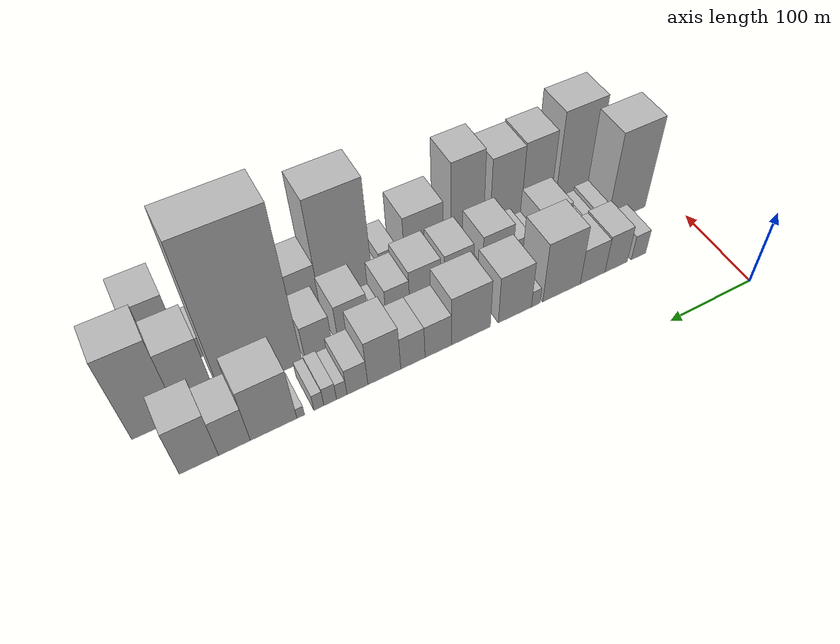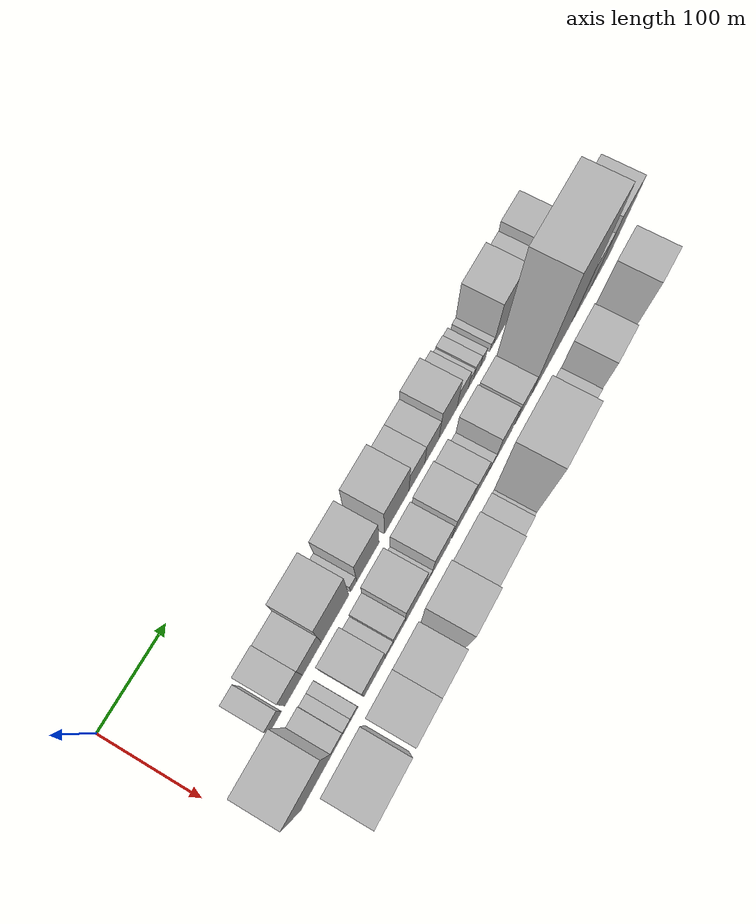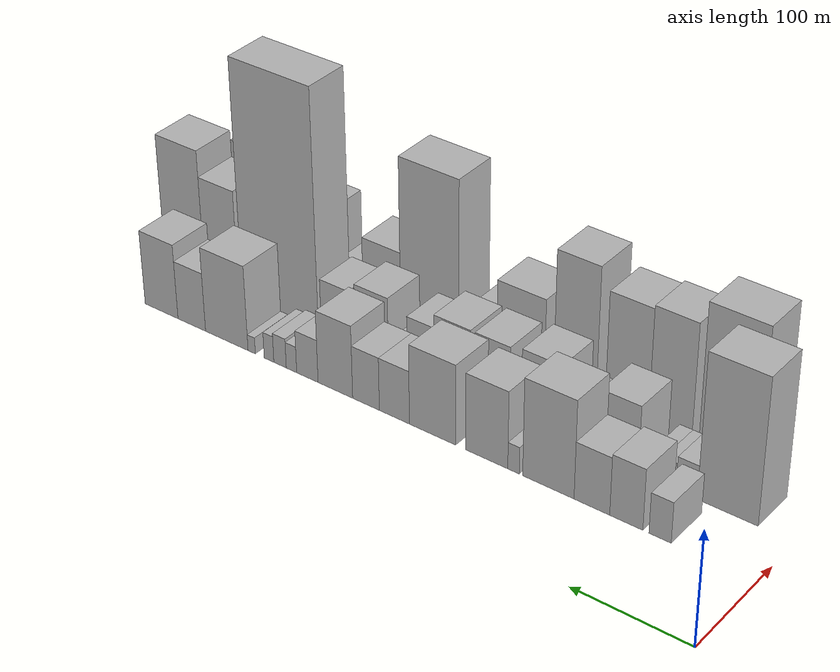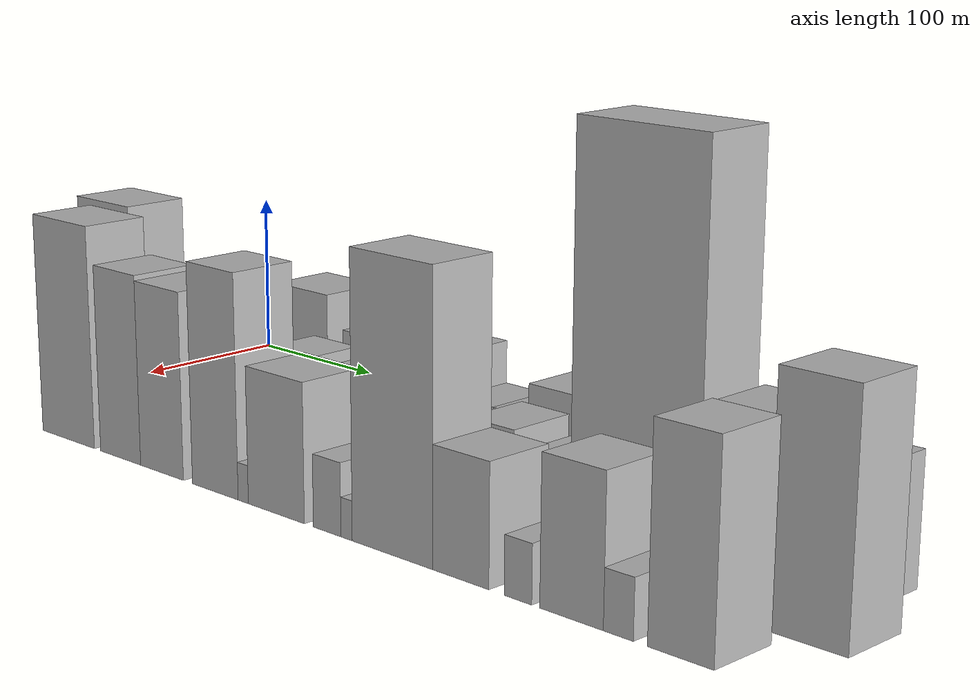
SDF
<sdf version="1.6">
 <world name="default">
  <model name="building_18">
   <static>1</static>
   <pose>100.0000 78.0467 0 0.000000 0.000000 0.000000</pose>
   <link name="link">
    <pose>0 0 18.00 0 0 0</pose>
    <collision name="collision"><geometry><box><size>40.0000 18.3079 36.0000</size></box></geometry></collision>
    <visual name="visual">
     <cast_shadows>0</cast_shadows>
     <geometry><box><size>40.0000 18.3079 36.0000</size></box></geometry>
     <material>
      <script>
       <uri>model://HANNAS_wall/materials/scripts</uri>
       <uri>model://HANNAS_wall/materials/textures</uri>
       <name>vrc/HANNAS_wall</name>
      </script>
     </material>
    </visual>
   </link>
  </model>
  <model name="building_19">
   <static>1</static>
   <pose>100.0000 106.0688 0 0.000000 0.000000 0.000000</pose>
   <link name="link">
    <pose>0 0 27.00 0 0 0</pose>
    <collision name="collision"><geometry><box><size>40.0000 27.7362 54.0000</size></box></geometry></collision>
    <visual name="visual">
     <cast_shadows>0</cast_shadows>
     <geometry><box><size>40.0000 27.7362 54.0000</size></box></geometry>
     <material>
      <script>
       <uri>model://HANNAS_wall/materials/scripts</uri>
       <uri>model://HANNAS_wall/materials/textures</uri>
       <name>vrc/HANNAS_wall</name>
      </script>
     </material>
    </visual>
   </link>
  </model>
  <model name="building_20">
   <static>1</static>
   <pose>100.0000 135.0909 0 0.000000 0.000000 0.000000</pose>
   <link name="link">
    <pose>0 0 25.50 0 0 0</pose>
    <collision name="collision"><geometry><box><size>40.0000 30.3081 51.0000</size></box></geometry></collision>
    <visual name="visual">
     <cast_shadows>0</cast_shadows>
     <geometry><box><size>40.0000 30.3081 51.0000</size></box></geometry>
     <material>
      <script>
       <uri>model://HANNAS_wall/materials/scripts</uri>
       <uri>model://HANNAS_wall/materials/textures</uri>
       <name>vrc/HANNAS_wall</name>
      </script>
     </material>
    </visual>
   </link>
  </model>
  <model name="building_21">
   <static>1</static>
   <pose>100.0000 172.5904 0 0.000000 0.000000 0.000000</pose>
   <link name="link">
    <pose>0 0 43.50 0 0 0</pose>
    <collision name="collision"><geometry><box><size>40.0000 44.6907 87.0000</size></box></geometry></collision>
    <visual name="visual">
     <cast_shadows>0</cast_shadows>
     <geometry><box><size>40.0000 44.6907 87.0000</size></box></geometry>
     <material>
      <script>
       <uri>model://HANNAS_wall/materials/scripts</uri>
       <uri>model://HANNAS_wall/materials/textures</uri>
       <name>vrc/HANNAS_wall</name>
      </script>
     </material>
    </visual>
   </link>
  </model>
  <model name="building_22">
   <static>1</static>
   <pose>100.0000 203.0269 0 0.000000 0.000000 0.000000</pose>
   <link name="link">
    <pose>0 0 12.00 0 0 0</pose>
    <collision name="collision"><geometry><box><size>40.0000 10.1823 24.0000</size></box></geometry></collision>
    <visual name="visual">
     <cast_shadows>0</cast_shadows>
     <geometry><box><size>40.0000 10.1823 24.0000</size></box></geometry>
     <material>
      <script>
       <uri>model://HANNAS_wall/materials/scripts</uri>
       <uri>model://HANNAS_wall/materials/textures</uri>
       <name>vrc/HANNAS_wall</name>
      </script>
     </material>
    </visual>
   </link>
  </model>
  <model name="building_23">
   <static>1</static>
   <pose>100.0000 227.0333 0 0.000000 0.000000 0.000000</pose>
   <link name="link">
    <pose>0 0 34.50 0 0 0</pose>
    <collision name="collision"><geometry><box><size>40.0000 37.8305 69.0000</size></box></geometry></collision>
    <visual name="visual">
     <cast_shadows>0</cast_shadows>
     <geometry><box><size>40.0000 37.8305 69.0000</size></box></geometry>
     <material>
      <script>
       <uri>model://HANNAS_wall/materials/scripts</uri>
       <uri>model://HANNAS_wall/materials/textures</uri>
       <name>vrc/HANNAS_wall</name>
      </script>
     </material>
    </visual>
   </link>
  </model>
  <model name="building_24">
   <static>1</static>
   <pose>100.0000 276.3763 0 0.000000 0.000000 0.000000</pose>
   <link name="link">
    <pose>0 0 36.00 0 0 0</pose>
    <collision name="collision"><geometry><box><size>40.0000 42.8556 72.0000</size></box></geometry></collision>
    <visual name="visual">
     <cast_shadows>0</cast_shadows>
     <geometry><box><size>40.0000 42.8556 72.0000</size></box></geometry>
     <material>
      <script>
       <uri>model://HANNAS_wall/materials/scripts</uri>
       <uri>model://HANNAS_wall/materials/textures</uri>
       <name>vrc/HANNAS_wall</name>
      </script>
     </material>
    </visual>
   </link>
  </model>
  <model name="building_25">
   <static>1</static>
   <pose>100.0000 311.9865 0 0.000000 0.000000 0.000000</pose>
   <link name="link">
    <pose>0 0 24.00 0 0 0</pose>
    <collision name="collision"><geometry><box><size>40.0000 28.3647 48.0000</size></box></geometry></collision>
    <visual name="visual">
     <cast_shadows>0</cast_shadows>
     <geometry><box><size>40.0000 28.3647 48.0000</size></box></geometry>
     <material>
      <script>
       <uri>model://HANNAS_wall/materials/scripts</uri>
       <uri>model://HANNAS_wall/materials/textures</uri>
       <name>vrc/HANNAS_wall</name>
      </script>
     </material>
    </visual>
   </link>
  </model>
  <model name="building_26">
   <static>1</static>
   <pose>100.0000 338.9722 0 0.000000 0.000000 0.000000</pose>
   <link name="link">
    <pose>0 0 24.00 0 0 0</pose>
    <collision name="collision"><geometry><box><size>40.0000 25.6068 48.0000</size></box></geometry></collision>
    <visual name="visual">
     <cast_shadows>0</cast_shadows>
     <geometry><box><size>40.0000 25.6068 48.0000</size></box></geometry>
     <material>
      <script>
       <uri>model://HANNAS_wall/materials/scripts</uri>
       <uri>model://HANNAS_wall/materials/textures</uri>
       <name>vrc/HANNAS_wall</name>
      </script>
     </material>
    </visual>
   </link>
  </model>
  <model name="building_27">
   <static>1</static>
   <pose>100.0000 368.6468 0 0.000000 0.000000 0.000000</pose>
   <link name="link">
    <pose>0 0 33.00 0 0 0</pose>
    <collision name="collision"><geometry><box><size>40.0000 33.7423 66.0000</size></box></geometry></collision>
    <visual name="visual">
     <cast_shadows>0</cast_shadows>
     <geometry><box><size>40.0000 33.7423 66.0000</size></box></geometry>
     <material>
      <script>
       <uri>model://HANNAS_wall/materials/scripts</uri>
       <uri>model://HANNAS_wall/materials/textures</uri>
       <name>vrc/HANNAS_wall</name>
      </script>
     </material>
    </visual>
   </link>
  </model>
  <model name="building_28">
   <static>1</static>
   <pose>100.0000 396.0992 0 0.000000 0.000000 0.000000</pose>
   <link name="link">
    <pose>0 0 19.50 0 0 0</pose>
    <collision name="collision"><geometry><box><size>40.0000 21.1626 39.0000</size></box></geometry></collision>
    <visual name="visual">
     <cast_shadows>0</cast_shadows>
     <geometry><box><size>40.0000 21.1626 39.0000</size></box></geometry>
     <material>
      <script>
       <uri>model://HANNAS_wall/materials/scripts</uri>
       <uri>model://HANNAS_wall/materials/textures</uri>
       <name>vrc/HANNAS_wall</name>
      </script>
     </material>
    </visual>
   </link>
  </model>
  <model name="building_29">
   <static>1</static>
   <pose>100.0000 411.8839 0 0.000000 0.000000 0.000000</pose>
   <link name="link">
    <pose>0 0 12.00 0 0 0</pose>
    <collision name="collision"><geometry><box><size>40.0000 10.4068 24.0000</size></box></geometry></collision>
    <visual name="visual">
     <cast_shadows>0</cast_shadows>
     <geometry><box><size>40.0000 10.4068 24.0000</size></box></geometry>
     <material>
      <script>
       <uri>model://HANNAS_wall/materials/scripts</uri>
       <uri>model://HANNAS_wall/materials/textures</uri>
       <name>vrc/HANNAS_wall</name>
      </script>
     </material>
    </visual>
   </link>
  </model>
  <model name="building_30">
   <static>1</static>
   <pose>100.0000 423.3340 0 0.000000 0.000000 0.000000</pose>
   <link name="link">
    <pose>0 0 13.50 0 0 0</pose>
    <collision name="collision"><geometry><box><size>40.0000 12.4933 27.0000</size></box></geometry></collision>
    <visual name="visual">
     <cast_shadows>0</cast_shadows>
     <geometry><box><size>40.0000 12.4933 27.0000</size></box></geometry>
     <material>
      <script>
       <uri>model://HANNAS_wall/materials/scripts</uri>
       <uri>model://HANNAS_wall/materials/textures</uri>
       <name>vrc/HANNAS_wall</name>
      </script>
     </material>
    </visual>
   </link>
  </model>
  <model name="building_31">
   <static>1</static>
   <pose>100.0000 434.4753 0 0.000000 0.000000 0.000000</pose>
   <link name="link">
    <pose>0 0 12.00 0 0 0</pose>
    <collision name="collision"><geometry><box><size>40.0000 9.7893 24.0000</size></box></geometry></collision>
    <visual name="visual">
     <cast_shadows>0</cast_shadows>
     <geometry><box><size>40.0000 9.7893 24.0000</size></box></geometry>
     <material>
      <script>
       <uri>model://HANNAS_wall/materials/scripts</uri>
       <uri>model://HANNAS_wall/materials/textures</uri>
       <name>vrc/HANNAS_wall</name>
      </script>
     </material>
    </visual>
   </link>
  </model>
  <model name="building_32">
   <static>1</static>
   <pose>100.0000 452.1030 0 0.000000 0.000000 0.000000</pose>
   <link name="link">
    <pose>0 0 7.50 0 0 0</pose>
    <collision name="collision"><geometry><box><size>40.0000 7.4662 15.0000</size></box></geometry></collision>
    <visual name="visual">
     <cast_shadows>0</cast_shadows>
     <geometry><box><size>40.0000 7.4662 15.0000</size></box></geometry>
     <material>
      <script>
       <uri>model://HANNAS_wall/materials/scripts</uri>
       <uri>model://HANNAS_wall/materials/textures</uri>
       <name>vrc/HANNAS_wall</name>
      </script>
     </material>
    </visual>
   </link>
  </model>
  <model name="building_33">
   <static>1</static>
   <pose>100.0000 477.8399 0 0.000000 0.000000 0.000000</pose>
   <link name="link">
    <pose>0 0 39.00 0 0 0</pose>
    <collision name="collision"><geometry><box><size>40.0000 44.0075 78.0000</size></box></geometry></collision>
    <visual name="visual">
     <cast_shadows>0</cast_shadows>
     <geometry><box><size>40.0000 44.0075 78.0000</size></box></geometry>
     <material>
      <script>
       <uri>model://HANNAS_wall/materials/scripts</uri>
       <uri>model://HANNAS_wall/materials/textures</uri>
       <name>vrc/HANNAS_wall</name>
      </script>
     </material>
    </visual>
   </link>
  </model>
  <model name="building_34">
   <static>1</static>
   <pose>100.0000 514.4065 0 0.000000 0.000000 0.000000</pose>
   <link name="link">
    <pose>0 0 27.00 0 0 0</pose>
    <collision name="collision"><geometry><box><size>40.0000 29.1258 54.0000</size></box></geometry></collision>
    <visual name="visual">
     <cast_shadows>0</cast_shadows>
     <geometry><box><size>40.0000 29.1258 54.0000</size></box></geometry>
     <material>
      <script>
       <uri>model://HANNAS_wall/materials/scripts</uri>
       <uri>model://HANNAS_wall/materials/textures</uri>
       <name>vrc/HANNAS_wall</name>
      </script>
     </material>
    </visual>
   </link>
  </model>
  <model name="building_35">
   <static>1</static>
   <pose>100.0000 546.5808 0 0.000000 0.000000 0.000000</pose>
   <link name="link">
    <pose>0 0 34.50 0 0 0</pose>
    <collision name="collision"><geometry><box><size>40.0000 35.2226 69.0000</size></box></geometry></collision>
    <visual name="visual">
     <cast_shadows>0</cast_shadows>
     <geometry><box><size>40.0000 35.2226 69.0000</size></box></geometry>
     <material>
      <script>
       <uri>model://HANNAS_wall/materials/scripts</uri>
       <uri>model://HANNAS_wall/materials/textures</uri>
       <name>vrc/HANNAS_wall</name>
      </script>
     </material>
    </visual>
   </link>
  </model>
  <model name="building_52">
   <static>1</static>
   <pose>152.0000 54.8650 0 0.000000 0.000000 0.000000</pose>
   <link name="link">
    <pose>0 0 64.50 0 0 0</pose>
    <collision name="collision"><geometry><box><size>40.0000 49.9821 129.0000</size></box></geometry></collision>
    <visual name="visual">
     <cast_shadows>0</cast_shadows>
     <geometry><box><size>40.0000 49.9821 129.0000</size></box></geometry>
     <material>
      <script>
       <uri>model://HANNAS_wall/materials/scripts</uri>
       <uri>model://HANNAS_wall/materials/textures</uri>
       <name>vrc/HANNAS_wall</name>
      </script>
     </material>
    </visual>
   </link>
  </model>
  <model name="building_53">
   <static>1</static>
   <pose>152.0000 88.7823 0 0.000000 0.000000 0.000000</pose>
   <link name="link">
    <pose>0 0 15.00 0 0 0</pose>
    <collision name="collision"><geometry><box><size>40.0000 17.8526 30.0000</size></box></geometry></collision>
    <visual name="visual">
     <cast_shadows>0</cast_shadows>
     <geometry><box><size>40.0000 17.8526 30.0000</size></box></geometry>
     <material>
      <script>
       <uri>model://HANNAS_wall/materials/scripts</uri>
       <uri>model://HANNAS_wall/materials/textures</uri>
       <name>vrc/HANNAS_wall</name>
      </script>
     </material>
    </visual>
   </link>
  </model>
  <model name="building_54">
   <static>1</static>
   <pose>152.0000 103.6320 0 0.000000 0.000000 0.000000</pose>
   <link name="link">
    <pose>0 0 12.00 0 0 0</pose>
    <collision name="collision"><geometry><box><size>40.0000 11.8467 24.0000</size></box></geometry></collision>
    <visual name="visual">
     <cast_shadows>0</cast_shadows>
     <geometry><box><size>40.0000 11.8467 24.0000</size></box></geometry>
     <material>
      <script>
       <uri>model://HANNAS_wall/materials/scripts</uri>
       <uri>model://HANNAS_wall/materials/textures</uri>
       <name>vrc/HANNAS_wall</name>
      </script>
     </material>
    </visual>
   </link>
  </model>
  <model name="building_55">
   <static>1</static>
   <pose>152.0000 115.1448 0 0.000000 0.000000 0.000000</pose>
   <link name="link">
    <pose>0 0 12.00 0 0 0</pose>
    <collision name="collision"><geometry><box><size>40.0000 11.1787 24.0000</size></box></geometry></collision>
    <visual name="visual">
     <cast_shadows>0</cast_shadows>
     <geometry><box><size>40.0000 11.1787 24.0000</size></box></geometry>
     <material>
      <script>
       <uri>model://HANNAS_wall/materials/scripts</uri>
       <uri>model://HANNAS_wall/materials/textures</uri>
       <name>vrc/HANNAS_wall</name>
      </script>
     </material>
    </visual>
   </link>
  </model>
  <model name="building_56">
   <static>1</static>
   <pose>152.0000 147.0022 0 0.000000 0.000000 0.000000</pose>
   <link name="link">
    <pose>0 0 30.00 0 0 0</pose>
    <collision name="collision"><geometry><box><size>40.0000 34.5362 60.0000</size></box></geometry></collision>
    <visual name="visual">
     <cast_shadows>0</cast_shadows>
     <geometry><box><size>40.0000 34.5362 60.0000</size></box></geometry>
     <material>
      <script>
       <uri>model://HANNAS_wall/materials/scripts</uri>
       <uri>model://HANNAS_wall/materials/textures</uri>
       <name>vrc/HANNAS_wall</name>
      </script>
     </material>
    </visual>
   </link>
  </model>
  <model name="building_57">
   <static>1</static>
   <pose>152.0000 170.9954 0 0.000000 0.000000 0.000000</pose>
   <link name="link">
    <pose>0 0 13.50 0 0 0</pose>
    <collision name="collision"><geometry><box><size>40.0000 13.4503 27.0000</size></box></geometry></collision>
    <visual name="visual">
     <cast_shadows>0</cast_shadows>
     <geometry><box><size>40.0000 13.4503 27.0000</size></box></geometry>
     <material>
      <script>
       <uri>model://HANNAS_wall/materials/scripts</uri>
       <uri>model://HANNAS_wall/materials/textures</uri>
       <name>vrc/HANNAS_wall</name>
      </script>
     </material>
    </visual>
   </link>
  </model>
  <model name="building_58">
   <static>1</static>
   <pose>152.0000 187.7708 0 0.000000 0.000000 0.000000</pose>
   <link name="link">
    <pose>0 0 19.50 0 0 0</pose>
    <collision name="collision"><geometry><box><size>40.0000 20.1006 39.0000</size></box></geometry></collision>
    <visual name="visual">
     <cast_shadows>0</cast_shadows>
     <geometry><box><size>40.0000 20.1006 39.0000</size></box></geometry>
     <material>
      <script>
       <uri>model://HANNAS_wall/materials/scripts</uri>
       <uri>model://HANNAS_wall/materials/textures</uri>
       <name>vrc/HANNAS_wall</name>
      </script>
     </material>
    </visual>
   </link>
  </model>
  <model name="building_59">
   <static>1</static>
   <pose>152.0000 215.5120 0 0.000000 0.000000 0.000000</pose>
   <link name="link">
    <pose>0 0 33.00 0 0 0</pose>
    <collision name="collision"><geometry><box><size>40.0000 35.3817 66.0000</size></box></geometry></collision>
    <visual name="visual">
     <cast_shadows>0</cast_shadows>
     <geometry><box><size>40.0000 35.3817 66.0000</size></box></geometry>
     <material>
      <script>
       <uri>model://HANNAS_wall/materials/scripts</uri>
       <uri>model://HANNAS_wall/materials/textures</uri>
       <name>vrc/HANNAS_wall</name>
      </script>
     </material>
    </visual>
   </link>
  </model>
  <model name="building_60">
   <static>1</static>
   <pose>152.0000 238.4505 0 0.000000 0.000000 0.000000</pose>
   <link name="link">
    <pose>0 0 12.00 0 0 0</pose>
    <collision name="collision"><geometry><box><size>40.0000 10.4954 24.0000</size></box></geometry></collision>
    <visual name="visual">
     <cast_shadows>0</cast_shadows>
     <geometry><box><size>40.0000 10.4954 24.0000</size></box></geometry>
     <material>
      <script>
       <uri>model://HANNAS_wall/materials/scripts</uri>
       <uri>model://HANNAS_wall/materials/textures</uri>
       <name>vrc/HANNAS_wall</name>
      </script>
     </material>
    </visual>
   </link>
  </model>
  <model name="building_61">
   <static>1</static>
   <pose>152.0000 259.8015 0 0.000000 0.000000 0.000000</pose>
   <link name="link">
    <pose>0 0 31.50 0 0 0</pose>
    <collision name="collision"><geometry><box><size>40.0000 32.2067 63.0000</size></box></geometry></collision>
    <visual name="visual">
     <cast_shadows>0</cast_shadows>
     <geometry><box><size>40.0000 32.2067 63.0000</size></box></geometry>
     <material>
      <script>
       <uri>model://HANNAS_wall/materials/scripts</uri>
       <uri>model://HANNAS_wall/materials/textures</uri>
       <name>vrc/HANNAS_wall</name>
      </script>
     </material>
    </visual>
   </link>
  </model>
  <model name="building_62">
   <static>1</static>
   <pose>152.0000 297.1086 0 0.000000 0.000000 0.000000</pose>
   <link name="link">
    <pose>0 0 31.50 0 0 0</pose>
    <collision name="collision"><geometry><box><size>40.0000 34.4074 63.0000</size></box></geometry></collision>
    <visual name="visual">
     <cast_shadows>0</cast_shadows>
     <geometry><box><size>40.0000 34.4074 63.0000</size></box></geometry>
     <material>
      <script>
       <uri>model://HANNAS_wall/materials/scripts</uri>
       <uri>model://HANNAS_wall/materials/textures</uri>
       <name>vrc/HANNAS_wall</name>
      </script>
     </material>
    </visual>
   </link>
  </model>
  <model name="building_63">
   <static>1</static>
   <pose>152.0000 327.1191 0 0.000000 0.000000 0.000000</pose>
   <link name="link">
    <pose>0 0 25.50 0 0 0</pose>
    <collision name="collision"><geometry><box><size>40.0000 25.6136 51.0000</size></box></geometry></collision>
    <visual name="visual">
     <cast_shadows>0</cast_shadows>
     <geometry><box><size>40.0000 25.6136 51.0000</size></box></geometry>
     <material>
      <script>
       <uri>model://HANNAS_wall/materials/scripts</uri>
       <uri>model://HANNAS_wall/materials/textures</uri>
       <name>vrc/HANNAS_wall</name>
      </script>
     </material>
    </visual>
   </link>
  </model>
  <model name="building_64">
   <static>1</static>
   <pose>152.0000 344.4212 0 0.000000 0.000000 0.000000</pose>
   <link name="link">
    <pose>0 0 9.00 0 0 0</pose>
    <collision name="collision"><geometry><box><size>40.0000 8.9906 18.0000</size></box></geometry></collision>
    <visual name="visual">
     <cast_shadows>0</cast_shadows>
     <geometry><box><size>40.0000 8.9906 18.0000</size></box></geometry>
     <material>
      <script>
       <uri>model://HANNAS_wall/materials/scripts</uri>
       <uri>model://HANNAS_wall/materials/textures</uri>
       <name>vrc/HANNAS_wall</name>
      </script>
     </material>
    </visual>
   </link>
  </model>
  <model name="building_65">
   <static>1</static>
   <pose>152.0000 353.5203 0 0.000000 0.000000 0.000000</pose>
   <link name="link">
    <pose>0 0 10.50 0 0 0</pose>
    <collision name="collision"><geometry><box><size>40.0000 9.2078 21.0000</size></box></geometry></collision>
    <visual name="visual">
     <cast_shadows>0</cast_shadows>
     <geometry><box><size>40.0000 9.2078 21.0000</size></box></geometry>
     <material>
      <script>
       <uri>model://HANNAS_wall/materials/scripts</uri>
       <uri>model://HANNAS_wall/materials/textures</uri>
       <name>vrc/HANNAS_wall</name>
      </script>
     </material>
    </visual>
   </link>
  </model>
  <model name="building_66">
   <static>1</static>
   <pose>152.0000 374.3418 0 0.000000 0.000000 0.000000</pose>
   <link name="link">
    <pose>0 0 30.00 0 0 0</pose>
    <collision name="collision"><geometry><box><size>40.0000 32.4352 60.0000</size></box></geometry></collision>
    <visual name="visual">
     <cast_shadows>0</cast_shadows>
     <geometry><box><size>40.0000 32.4352 60.0000</size></box></geometry>
     <material>
      <script>
       <uri>model://HANNAS_wall/materials/scripts</uri>
       <uri>model://HANNAS_wall/materials/textures</uri>
       <name>vrc/HANNAS_wall</name>
      </script>
     </material>
    </visual>
   </link>
  </model>
  <model name="building_67">
   <static>1</static>
   <pose>152.0000 410.7092 0 0.000000 0.000000 0.000000</pose>
   <link name="link">
    <pose>0 0 25.50 0 0 0</pose>
    <collision name="collision"><geometry><box><size>40.0000 28.2995 51.0000</size></box></geometry></collision>
    <visual name="visual">
     <cast_shadows>0</cast_shadows>
     <geometry><box><size>40.0000 28.2995 51.0000</size></box></geometry>
     <material>
      <script>
       <uri>model://HANNAS_wall/materials/scripts</uri>
       <uri>model://HANNAS_wall/materials/textures</uri>
       <name>vrc/HANNAS_wall</name>
      </script>
     </material>
    </visual>
   </link>
  </model>
  <model name="building_68">
   <static>1</static>
   <pose>152.0000 467.1438 0 0.000000 0.000000 0.000000</pose>
   <link name="link">
    <pose>0 0 109.50 0 0 0</pose>
    <collision name="collision"><geometry><box><size>40.0000 78.5698 219.0000</size></box></geometry></collision>
    <visual name="visual">
     <cast_shadows>0</cast_shadows>
     <geometry><box><size>40.0000 78.5698 219.0000</size></box></geometry>
     <material>
      <script>
       <uri>model://HANNAS_wall/materials/scripts</uri>
       <uri>model://HANNAS_wall/materials/textures</uri>
       <name>vrc/HANNAS_wall</name>
      </script>
     </material>
    </visual>
   </link>
  </model>
  <model name="building_69">
   <static>1</static>
   <pose>152.0000 528.4487 0 0.000000 0.000000 0.000000</pose>
   <link name="link">
    <pose>0 0 49.50 0 0 0</pose>
    <collision name="collision"><geometry><box><size>40.0000 36.0399 99.0000</size></box></geometry></collision>
    <visual name="visual">
     <cast_shadows>0</cast_shadows>
     <geometry><box><size>40.0000 36.0399 99.0000</size></box></geometry>
     <material>
      <script>
       <uri>model://HANNAS_wall/materials/scripts</uri>
       <uri>model://HANNAS_wall/materials/textures</uri>
       <name>vrc/HANNAS_wall</name>
      </script>
     </material>
    </visual>
   </link>
  </model>
  <model name="building_70">
   <static>1</static>
   <pose>152.0000 568.1302 0 0.000000 0.000000 0.000000</pose>
   <link name="link">
    <pose>0 0 61.50 0 0 0</pose>
    <collision name="collision"><geometry><box><size>40.0000 43.3233 123.0000</size></box></geometry></collision>
    <visual name="visual">
     <cast_shadows>0</cast_shadows>
     <geometry><box><size>40.0000 43.3233 123.0000</size></box></geometry>
     <material>
      <script>
       <uri>model://HANNAS_wall/materials/scripts</uri>
       <uri>model://HANNAS_wall/materials/textures</uri>
       <name>vrc/HANNAS_wall</name>
      </script>
     </material>
    </visual>
   </link>
  </model>
  <model name="building_88">
   <static>1</static>
   <pose>204.0000 85.3522 0 0.000000 0.000000 0.000000</pose>
   <link name="link">
    <pose>0 0 64.50 0 0 0</pose>
    <collision name="collision"><geometry><box><size>40.0000 51.1096 129.0000</size></box></geometry></collision>
    <visual name="visual">
     <cast_shadows>0</cast_shadows>
     <geometry><box><size>40.0000 51.1096 129.0000</size></box></geometry>
     <material>
      <script>
       <uri>model://HANNAS_wall/materials/scripts</uri>
       <uri>model://HANNAS_wall/materials/textures</uri>
       <name>vrc/HANNAS_wall</name>
      </script>
     </material>
    </visual>
   </link>
  </model>
  <model name="building_89">
   <static>1</static>
   <pose>204.0000 135.7218 0 0.000000 0.000000 0.000000</pose>
   <link name="link">
    <pose>0 0 54.00 0 0 0</pose>
    <collision name="collision"><geometry><box><size>40.0000 37.6296 108.0000</size></box></geometry></collision>
    <visual name="visual">
     <cast_shadows>0</cast_shadows>
     <geometry><box><size>40.0000 37.6296 108.0000</size></box></geometry>
     <material>
      <script>
       <uri>model://HANNAS_wall/materials/scripts</uri>
       <uri>model://HANNAS_wall/materials/textures</uri>
       <name>vrc/HANNAS_wall</name>
      </script>
     </material>
    </visual>
   </link>
  </model>
  <model name="building_90">
   <static>1</static>
   <pose>204.0000 173.7433 0 0.000000 0.000000 0.000000</pose>
   <link name="link">
    <pose>0 0 52.50 0 0 0</pose>
    <collision name="collision"><geometry><box><size>40.0000 38.4134 105.0000</size></box></geometry></collision>
    <visual name="visual">
     <cast_shadows>0</cast_shadows>
     <geometry><box><size>40.0000 38.4134 105.0000</size></box></geometry>
     <material>
      <script>
       <uri>model://HANNAS_wall/materials/scripts</uri>
       <uri>model://HANNAS_wall/materials/textures</uri>
       <name>vrc/HANNAS_wall</name>
      </script>
     </material>
    </visual>
   </link>
  </model>
  <model name="building_91">
   <static>1</static>
   <pose>204.0000 220.3657 0 0.000000 0.000000 0.000000</pose>
   <link name="link">
    <pose>0 0 61.50 0 0 0</pose>
    <collision name="collision"><geometry><box><size>40.0000 38.8313 123.0000</size></box></geometry></collision>
    <visual name="visual">
     <cast_shadows>0</cast_shadows>
     <geometry><box><size>40.0000 38.8313 123.0000</size></box></geometry>
     <material>
      <script>
       <uri>model://HANNAS_wall/materials/scripts</uri>
       <uri>model://HANNAS_wall/materials/textures</uri>
       <name>vrc/HANNAS_wall</name>
      </script>
     </material>
    </visual>
   </link>
  </model>
  <model name="building_92">
   <static>1</static>
   <pose>204.0000 243.9917 0 0.000000 0.000000 0.000000</pose>
   <link name="link">
    <pose>0 0 10.50 0 0 0</pose>
    <collision name="collision"><geometry><box><size>40.0000 8.4208 21.0000</size></box></geometry></collision>
    <visual name="visual">
     <cast_shadows>0</cast_shadows>
     <geometry><box><size>40.0000 8.4208 21.0000</size></box></geometry>
     <material>
      <script>
       <uri>model://HANNAS_wall/materials/scripts</uri>
       <uri>model://HANNAS_wall/materials/textures</uri>
       <name>vrc/HANNAS_wall</name>
      </script>
     </material>
    </visual>
   </link>
  </model>
  <model name="building_93">
   <static>1</static>
   <pose>204.0000 270.5901 0 0.000000 0.000000 0.000000</pose>
   <link name="link">
    <pose>0 0 37.50 0 0 0</pose>
    <collision name="collision"><geometry><box><size>40.0000 44.7759 75.0000</size></box></geometry></collision>
    <visual name="visual">
     <cast_shadows>0</cast_shadows>
     <geometry><box><size>40.0000 44.7759 75.0000</size></box></geometry>
     <material>
      <script>
       <uri>model://HANNAS_wall/materials/scripts</uri>
       <uri>model://HANNAS_wall/materials/textures</uri>
       <name>vrc/HANNAS_wall</name>
      </script>
     </material>
    </visual>
   </link>
  </model>
  <model name="building_94">
   <static>1</static>
   <pose>204.0000 310.4225 0 0.000000 0.000000 0.000000</pose>
   <link name="link">
    <pose>0 0 19.50 0 0 0</pose>
    <collision name="collision"><geometry><box><size>40.0000 20.8889 39.0000</size></box></geometry></collision>
    <visual name="visual">
     <cast_shadows>0</cast_shadows>
     <geometry><box><size>40.0000 20.8889 39.0000</size></box></geometry>
     <material>
      <script>
       <uri>model://HANNAS_wall/materials/scripts</uri>
       <uri>model://HANNAS_wall/materials/textures</uri>
       <name>vrc/HANNAS_wall</name>
      </script>
     </material>
    </visual>
   </link>
  </model>
  <model name="building_95">
   <static>1</static>
   <pose>204.0000 325.0758 0 0.000000 0.000000 0.000000</pose>
   <link name="link">
    <pose>0 0 10.50 0 0 0</pose>
    <collision name="collision"><geometry><box><size>40.0000 8.4177 21.0000</size></box></geometry></collision>
    <visual name="visual">
     <cast_shadows>0</cast_shadows>
     <geometry><box><size>40.0000 8.4177 21.0000</size></box></geometry>
     <material>
      <script>
       <uri>model://HANNAS_wall/materials/scripts</uri>
       <uri>model://HANNAS_wall/materials/textures</uri>
       <name>vrc/HANNAS_wall</name>
      </script>
     </material>
    </visual>
   </link>
  </model>
  <model name="building_96">
   <static>1</static>
   <pose>204.0000 357.9112 0 0.000000 0.000000 0.000000</pose>
   <link name="link">
    <pose>0 0 75.00 0 0 0</pose>
    <collision name="collision"><geometry><box><size>40.0000 57.2531 150.0000</size></box></geometry></collision>
    <visual name="visual">
     <cast_shadows>0</cast_shadows>
     <geometry><box><size>40.0000 57.2531 150.0000</size></box></geometry>
     <material>
      <script>
       <uri>model://HANNAS_wall/materials/scripts</uri>
       <uri>model://HANNAS_wall/materials/textures</uri>
       <name>vrc/HANNAS_wall</name>
      </script>
     </material>
    </visual>
   </link>
  </model>
  <model name="building_97">
   <static>1</static>
   <pose>204.0000 405.4020 0 0.000000 0.000000 0.000000</pose>
   <link name="link">
    <pose>0 0 31.50 0 0 0</pose>
    <collision name="collision"><geometry><box><size>40.0000 37.7286 63.0000</size></box></geometry></collision>
    <visual name="visual">
     <cast_shadows>0</cast_shadows>
     <geometry><box><size>40.0000 37.7286 63.0000</size></box></geometry>
     <material>
      <script>
       <uri>model://HANNAS_wall/materials/scripts</uri>
       <uri>model://HANNAS_wall/materials/textures</uri>
       <name>vrc/HANNAS_wall</name>
      </script>
     </material>
    </visual>
   </link>
  </model>
  <model name="building_98">
   <static>1</static>
   <pose>204.0000 442.9938 0 0.000000 0.000000 0.000000</pose>
   <link name="link">
    <pose>0 0 15.00 0 0 0</pose>
    <collision name="collision"><geometry><box><size>40.0000 17.4550 30.0000</size></box></geometry></collision>
    <visual name="visual">
     <cast_shadows>0</cast_shadows>
     <geometry><box><size>40.0000 17.4550 30.0000</size></box></geometry>
     <material>
      <script>
       <uri>model://HANNAS_wall/materials/scripts</uri>
       <uri>model://HANNAS_wall/materials/textures</uri>
       <name>vrc/HANNAS_wall</name>
      </script>
     </material>
    </visual>
   </link>
  </model>
  <model name="building_99">
   <static>1</static>
   <pose>204.0000 475.9951 0 0.000000 0.000000 0.000000</pose>
   <link name="link">
    <pose>0 0 37.50 0 0 0</pose>
    <collision name="collision"><geometry><box><size>40.0000 38.5476 75.0000</size></box></geometry></collision>
    <visual name="visual">
     <cast_shadows>0</cast_shadows>
     <geometry><box><size>40.0000 38.5476 75.0000</size></box></geometry>
     <material>
      <script>
       <uri>model://HANNAS_wall/materials/scripts</uri>
       <uri>model://HANNAS_wall/materials/textures</uri>
       <name>vrc/HANNAS_wall</name>
      </script>
     </material>
    </visual>
   </link>
  </model>
  <model name="building_100">
   <static>1</static>
   <pose>204.0000 504.0081 0 0.000000 0.000000 0.000000</pose>
   <link name="link">
    <pose>0 0 15.00 0 0 0</pose>
    <collision name="collision"><geometry><box><size>40.0000 17.4784 30.0000</size></box></geometry></collision>
    <visual name="visual">
     <cast_shadows>0</cast_shadows>
     <geometry><box><size>40.0000 17.4784 30.0000</size></box></geometry>
     <material>
      <script>
       <uri>model://HANNAS_wall/materials/scripts</uri>
       <uri>model://HANNAS_wall/materials/textures</uri>
       <name>vrc/HANNAS_wall</name>
      </script>
     </material>
    </visual>
   </link>
  </model>
  <model name="building_101">
   <static>1</static>
   <pose>204.0000 539.1920 0 0.000000 0.000000 0.000000</pose>
   <link name="link">
    <pose>0 0 52.50 0 0 0</pose>
    <collision name="collision"><geometry><box><size>40.0000 36.8893 105.0000</size></box></geometry></collision>
    <visual name="visual">
     <cast_shadows>0</cast_shadows>
     <geometry><box><size>40.0000 36.8893 105.0000</size></box></geometry>
     <material>
      <script>
       <uri>model://HANNAS_wall/materials/scripts</uri>
       <uri>model://HANNAS_wall/materials/textures</uri>
       <name>vrc/HANNAS_wall</name>
      </script>
     </material>
    </visual>
   </link>
  </model>
 </world>
</sdf>
